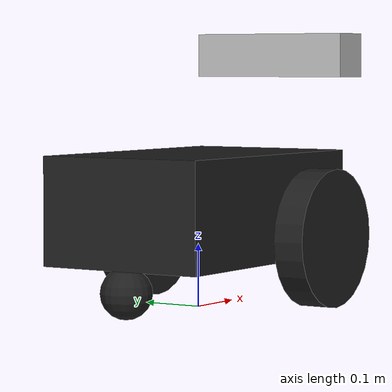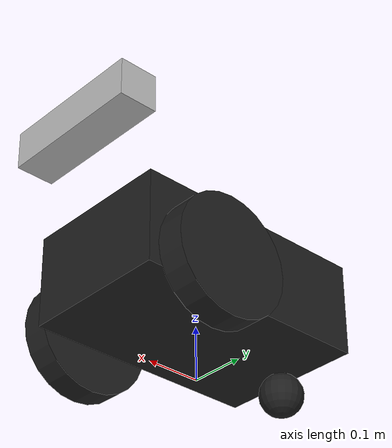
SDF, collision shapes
<?xml version="1.0" encoding="UTF-8"?>
<sdf version="1.6">
   <model name="my_robot_kinetic">
      <static>false</static>
      <link name="chassis">
         <pose frame="">-0 -0 0.16 0 -0 0</pose>
         <inertial>
            <mass>3.6</mass>
            <inertia>
               <ixx>0</ixx>
               <iyy>0</iyy>
               <izz>0</izz>
               <ixy>0</ixy>
               <ixz>0</ixz>
               <iyz>0</iyz>
            </inertia>
         </inertial>
         <self_collide>0</self_collide>
         <kinematic>0</kinematic>
         <visual name="castor_visual">
            <pose frame="">-0.2 0 -0.12 0 -0 0</pose>
            <geometry>
               <sphere>
                  <radius>0.04</radius>
               </sphere>
            </geometry>
            <material>
               <script>
                  <uri>file://media/materials/scripts/gazebo.material</uri>
                  <name>Gazebo/FlatBlack</name>
               </script>
               <ambient>0.1 0.1 0.1 1</ambient>
               <diffuse>0.1 0.1 0.1 1</diffuse>
               <specular>0.01 0.01 0.01 1</specular>
               <emissive>0 0 0 1</emissive>
            </material>
            <transparency>0</transparency>
            <cast_shadows>1</cast_shadows>
         </visual>
         <visual name="visual">
            <pose frame="">0 0 0.04 0 -0 0</pose>
            <geometry>
               <mesh>
                  <uri>model://pioneer2dx/meshes/chassis.dae</uri>
               </mesh>
            </geometry>
            <cast_shadows>1</cast_shadows>
            <transparency>0</transparency>
         </visual>
         <collision name="castor_collision">
            <laser_retro>0</laser_retro>
            <max_contacts>10</max_contacts>
            <pose frame="">-0.2 0 -0.12 0 -0 0</pose>
            <geometry>
               <sphere>
                  <radius>0.04</radius>
               </sphere>
            </geometry>
            <surface>
               <friction>
                  <ode>
                     <mu>0</mu>
                     <mu2>0</mu2>
                     <fdir1>0 0 0</fdir1>
                     <slip1>1</slip1>
                     <slip2>1</slip2>
                  </ode>
                  <torsional>
                     <coefficient>1</coefficient>
                     <patch_radius>0</patch_radius>
                     <surface_radius>0</surface_radius>
                     <use_patch_radius>1</use_patch_radius>
                     <ode>
                        <slip>0</slip>
                     </ode>
                  </torsional>
               </friction>
               <bounce>
                  <restitution_coefficient>0</restitution_coefficient>
                  <threshold>1e+06</threshold>
               </bounce>
               <contact>
                  <collide_without_contact>0</collide_without_contact>
                  <collide_without_contact_bitmask>1</collide_without_contact_bitmask>
                  <collide_bitmask>1</collide_bitmask>
                  <ode>
                     <soft_cfm>0</soft_cfm>
                     <soft_erp>0.2</soft_erp>
                     <kp>1e+13</kp>
                     <kd>1</kd>
                     <max_vel>0.01</max_vel>
                     <min_depth>0</min_depth>
                  </ode>
                  <bullet>
                     <split_impulse>1</split_impulse>
                     <split_impulse_penetration_threshold>-0.01</split_impulse_penetration_threshold>
                     <soft_cfm>0</soft_cfm>
                     <soft_erp>0.2</soft_erp>
                     <kp>1e+13</kp>
                     <kd>1</kd>
                  </bullet>
               </contact>
            </surface>
         </collision>
         <collision name="collision">
            <laser_retro>0</laser_retro>
            <max_contacts>10</max_contacts>
            <pose frame="">0 0 0 0 -0 0</pose>
            <geometry>
               <box>
                  <size>0.445 0.277 0.17</size>
               </box>
            </geometry>
            <surface>
               <friction>
                  <ode>
                     <mu>1</mu>
                     <mu2>1</mu2>
                     <fdir1>0 0 0</fdir1>
                     <slip1>0</slip1>
                     <slip2>0</slip2>
                  </ode>
                  <torsional>
                     <coefficient>1</coefficient>
                     <patch_radius>0</patch_radius>
                     <surface_radius>0</surface_radius>
                     <use_patch_radius>1</use_patch_radius>
                     <ode>
                        <slip>0</slip>
                     </ode>
                  </torsional>
               </friction>
               <bounce>
                  <restitution_coefficient>0</restitution_coefficient>
                  <threshold>1e+06</threshold>
               </bounce>
               <contact>
                  <collide_without_contact>0</collide_without_contact>
                  <collide_without_contact_bitmask>1</collide_without_contact_bitmask>
                  <collide_bitmask>1</collide_bitmask>
                  <ode>
                     <soft_cfm>0</soft_cfm>
                     <soft_erp>0.2</soft_erp>
                     <kp>1e+13</kp>
                     <kd>1</kd>
                     <max_vel>0.01</max_vel>
                     <min_depth>0</min_depth>
                  </ode>
                  <bullet>
                     <split_impulse>1</split_impulse>
                     <split_impulse_penetration_threshold>-0.01</split_impulse_penetration_threshold>
                     <soft_cfm>0</soft_cfm>
                     <soft_erp>0.2</soft_erp>
                     <kp>1e+13</kp>
                     <kd>1</kd>
                  </bullet>
               </contact>
            </surface>
         </collision>
      </link>
      <link name="left_wheel">
         <pose frame="">0.1 -0.17 0.11 0.000239 1.5707 1.57094</pose>
         <inertial>
            <mass>1.5</mass>
            <inertia>
               <ixx>0.0051</ixx>
               <iyy>0.0051</iyy>
               <izz>0.009</izz>
               <ixy>0</ixy>
               <ixz>0</ixz>
               <iyz>0</iyz>
            </inertia>
         </inertial>
         <self_collide>0</self_collide>
         <kinematic>0</kinematic>
         <visual name="visual">
            <geometry>
               <cylinder>
                  <radius>0.11</radius>
                  <length>0.05</length>
               </cylinder>
            </geometry>
            <material>
               <script>
                  <uri>file://media/materials/scripts/gazebo.material</uri>
                  <name>Gazebo/FlatBlack</name>
               </script>
               <ambient>0.1 0.1 0.1 1</ambient>
               <diffuse>0.1 0.1 0.1 1</diffuse>
               <specular>0.01 0.01 0.01 1</specular>
               <emissive>0 0 0 1</emissive>
            </material>
            <pose frame="">0 0 0 0 -0 0</pose>
            <transparency>0</transparency>
            <cast_shadows>1</cast_shadows>
         </visual>
         <collision name="collision">
            <laser_retro>0</laser_retro>
            <max_contacts>10</max_contacts>
            <pose frame="">0 0 0 0 -0 0</pose>
            <geometry>
               <cylinder>
                  <radius>0.11</radius>
                  <length>0.05</length>
               </cylinder>
            </geometry>
            <surface>
               <friction>
                  <ode>
                     <mu>100000</mu>
                     <mu2>100000</mu2>
                     <fdir1>0 0 0</fdir1>
                     <slip1>0</slip1>
                     <slip2>0</slip2>
                  </ode>
                  <torsional>
                     <coefficient>1</coefficient>
                     <patch_radius>0</patch_radius>
                     <surface_radius>0</surface_radius>
                     <use_patch_radius>1</use_patch_radius>
                     <ode>
                        <slip>0</slip>
                     </ode>
                  </torsional>
               </friction>
               <bounce>
                  <restitution_coefficient>0</restitution_coefficient>
                  <threshold>1e+06</threshold>
               </bounce>
               <contact>
                  <collide_without_contact>0</collide_without_contact>
                  <collide_without_contact_bitmask>1</collide_without_contact_bitmask>
                  <collide_bitmask>1</collide_bitmask>
                  <ode>
                     <soft_cfm>0</soft_cfm>
                     <soft_erp>0.2</soft_erp>
                     <kp>1e+13</kp>
                     <kd>1</kd>
                     <max_vel>0.01</max_vel>
                     <min_depth>0</min_depth>
                  </ode>
                  <bullet>
                     <split_impulse>1</split_impulse>
                     <split_impulse_penetration_threshold>-0.01</split_impulse_penetration_threshold>
                     <soft_cfm>0</soft_cfm>
                     <soft_erp>0.2</soft_erp>
                     <kp>1e+13</kp>
                     <kd>1</kd>
                  </bullet>
               </contact>
            </surface>
         </collision>
      </link>
      <link name="right_wheel">
         <pose frame="">0.1 0.17 0.11 0.000239 1.5707 1.57094</pose>
         <inertial>
            <mass>1.5</mass>
            <inertia>
               <ixx>0.0051</ixx>
               <iyy>0.0890</iyy>
               <izz>0.009</izz>
               <ixy>0</ixy>
               <ixz>0</ixz>
               <iyz>0</iyz>
            </inertia>
         </inertial>
         <self_collide>0</self_collide>
         <kinematic>0</kinematic>
         <visual name="visual">
            <geometry>
               <cylinder>
                  <radius>0.11</radius>
                  <length>0.05</length>
               </cylinder>
            </geometry>
            <material>
               <script>
                  <uri>file://media/materials/scripts/gazebo.material</uri>
                  <name>Gazebo/FlatBlack</name>
               </script>
               <ambient>0.1 0.1 0.1 1</ambient>
               <diffuse>0.1 0.1 0.1 1</diffuse>
               <specular>0.01 0.01 0.01 1</specular>
               <emissive>0 0 0 1</emissive>
            </material>
            <pose frame="">0 0 0 0 -0 0</pose>
            <transparency>0</transparency>
            <cast_shadows>1</cast_shadows>
         </visual>
         <collision name="collision">
            <laser_retro>0</laser_retro>
            <max_contacts>10</max_contacts>
            <pose frame="">0 0 0 0 -0 0</pose>
            <geometry>
               <cylinder>
                  <radius>0.11</radius>
                  <length>0.05</length>
               </cylinder>
            </geometry>
            <surface>
               <friction>
                  <ode>
                     <mu>100000</mu>
                     <mu2>100000</mu2>
                     <fdir1>0 0 0</fdir1>
                     <slip1>0</slip1>
                     <slip2>0</slip2>
                  </ode>
                  <torsional>
                     <coefficient>1</coefficient>
                     <patch_radius>0</patch_radius>
                     <surface_radius>0</surface_radius>
                     <use_patch_radius>1</use_patch_radius>
                     <ode>
                        <slip>0</slip>
                     </ode>
                  </torsional>
               </friction>
               <bounce>
                  <restitution_coefficient>0</restitution_coefficient>
                  <threshold>1e+06</threshold>
               </bounce>
               <contact>
                  <collide_without_contact>0</collide_without_contact>
                  <collide_without_contact_bitmask>1</collide_without_contact_bitmask>
                  <collide_bitmask>1</collide_bitmask>
                  <ode>
                     <soft_cfm>0</soft_cfm>
                     <soft_erp>0.2</soft_erp>
                     <kp>1e+13</kp>
                     <kd>1</kd>
                     <max_vel>0.01</max_vel>
                     <min_depth>0</min_depth>
                  </ode>
                  <bullet>
                     <split_impulse>1</split_impulse>
                     <split_impulse_penetration_threshold>-0.01</split_impulse_penetration_threshold>
                     <soft_cfm>0</soft_cfm>
                     <soft_erp>0.2</soft_erp>
                     <kp>1e+13</kp>
                     <kd>1</kd>
                  </bullet>
               </contact>
            </surface>
         </collision>
      </link>
      <joint name="left_wheel_hinge" type="revolute">
         <parent>chassis</parent>
         <child>left_wheel</child>
         <pose frame="">0 0 -0.03 0 -0 0</pose>
         <axis>
            <xyz>0 1 0</xyz>
            <use_parent_model_frame>1</use_parent_model_frame>
            <limit>
               <lower>-1e+16</lower>
               <upper>1e+16</upper>
               <effort>-1</effort>
               <velocity>-1</velocity>
            </limit>
            <dynamics>
               <spring_reference>0</spring_reference>
               <spring_stiffness>0</spring_stiffness>
               <damping>0</damping>
               <friction>0</friction>
            </dynamics>
         </axis>
         <physics>
            <ode>
               <limit>
                  <cfm>0</cfm>
                  <erp>0.2</erp>
               </limit>
               <suspension>
                  <cfm>0</cfm>
                  <erp>0.2</erp>
               </suspension>
            </ode>
         </physics>
      </joint>
      <joint name="right_wheel_hinge" type="revolute">
         <parent>chassis</parent>
         <child>right_wheel</child>
         <pose frame="">0 0 0.03 0 -0 0</pose>
         <axis>
            <xyz>0 1 0</xyz>
            <use_parent_model_frame>1</use_parent_model_frame>
            <limit>
               <lower>-1e+16</lower>
               <upper>1e+16</upper>
               <effort>-1</effort>
               <velocity>-1</velocity>
            </limit>
            <dynamics>
               <spring_reference>0</spring_reference>
               <spring_stiffness>0</spring_stiffness>
               <damping>0</damping>
               <friction>0</friction>
            </dynamics>
         </axis>
         <physics>
            <ode>
               <limit>
                  <cfm>0</cfm>
                  <erp>0.2</erp>
               </limit>
               <suspension>
                  <cfm>0</cfm>
                  <erp>0.2</erp>
               </suspension>
            </ode>
         </physics>
      </joint>
      <plugin name="differential_drive_controller" filename="libgazebo_ros_diff_drive.so">
         <alwaysOn>true</alwaysOn>
         <updateRate>20</updateRate>
         <leftJoint>left_wheel_hinge</leftJoint>
         <rightJoint>right_wheel_hinge</rightJoint>
         <wheelSeparation>0.39</wheelSeparation>
         <wheelDiameter>0.15</wheelDiameter>
         <wheelTorque>20</wheelTorque>
         <commandTopic>/cmd_vel</commandTopic>
         <odometryTopic>/odom</odometryTopic>
         <odometryFrame>/odom</odometryFrame>
         <publishTf>1</publishTf>
         <publishWheelJointState>true</publishWheelJointState>
         <robotBaseFrame>base_link</robotBaseFrame>
      </plugin>
      <link name="kinect_link">
         <pose frame="kinect_link">0.25 0 0.4 -0 0 0</pose>
         <inertial>
            <mass>0.1</mass>
         </inertial>
         <collision name="collision">
            <geometry>
               <box>
                  <size>0.073000 0.276000 0.072000</size>
               </box>
            </geometry>
         </collision>
         <visual name="visual">
            <geometry>
               <mesh>
                  <uri>model://kinect/meshes/kinect.dae</uri>
               </mesh>
            </geometry>
         </visual>

         <sensor name="camera" type="depth">
            <update_rate>20</update_rate>
            <always_on>1</always_on>
            <visualize>false</visualize>
            <camera>
               <horizontal_fov>1.047198</horizontal_fov>
               <image>
                  <width>800</width>
                  <height>600</height>
                  <format>R8G8B8</format>
               </image>
               <clip>
                  <near>0.05</near>
                  <far>7</far>
               </clip>
            </camera>
            <plugin name="camera_controller" filename="libgazebo_ros_openni_kinect.so">
               <alwaysOn>true</alwaysOn>
               <updateRate>0.0</updateRate>
               <cameraName>camera</cameraName>
               <frameName>kinect_depth_optical_frame</frameName>
               <imageTopicName>rgb/image_raw</imageTopicName>
               <depthImageTopicName>depth/image_raw</depthImageTopicName>
               <pointCloudTopicName>depth/points</pointCloudTopicName>
               <cameraInfoTopicName>rgb/camera_info</cameraInfoTopicName>
               <depthImageCameraInfoTopicName>depth/camera_info</depthImageCameraInfoTopicName>
               <pointCloudCutoff>0.01</pointCloudCutoff>
	       <pointCloudCutoffMax>5.0</pointCloudCutoffMax>
               <hackBaseline>0.0</hackBaseline>
               <distortionK1>0.0</distortionK1>
               <distortionK2>0.0</distortionK2>
               <distortionK3>0.0</distortionK3>
               <distortionT1>0.0</distortionT1>
               <distortionT2>0.0</distortionT2>
               <CxPrime>0.0</CxPrime>
               <Cx>0.0</Cx>
               <Cy>0.0</Cy>
               <focalLength>0.0</focalLength>
            </plugin>
         </sensor>
      </link>
      <joint type="fixed" name="kinect_joint">
         <pose>0.15 0 0.4 0 0 0</pose>
         <child>kinect_link</child>
         <parent>chassis</parent>
         <axis>
            <xyz>0 1 0</xyz>
         </axis>
      </joint>

  <joint name="kinect_depth_optical_joint" type="fixed">
    <pose>"0 0 3 0 0 0"</pose>
    <parent> kinect_link </parent>
    <child> kinect_depth_optical_frame</child>
         <axis>
            <xyz>0 1 0</xyz>
         </axis>
  </joint>

<link name="kinect_depth_optical_frame">
         <pose frame="">0.25 0 0.4 -0 -0 0</pose>
         <inertial>
            <mass>0.1</mass>
         </inertial>
</link>

   </model>
</sdf>
